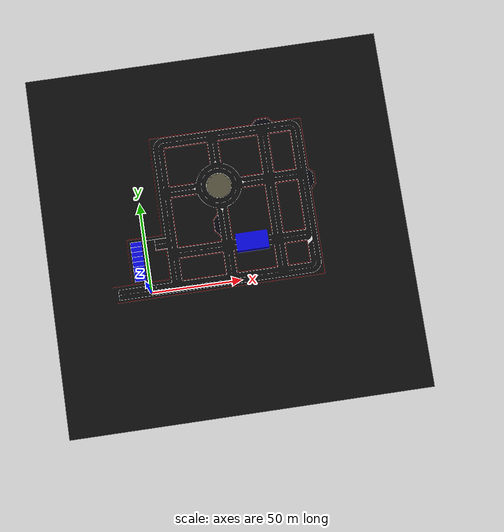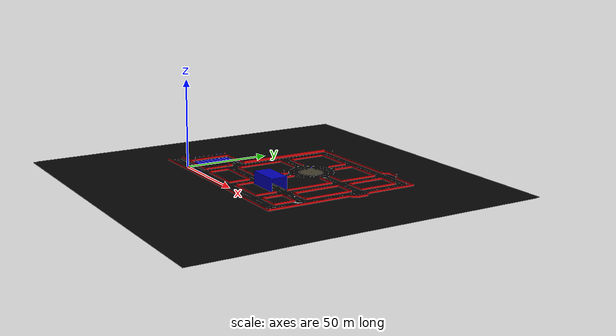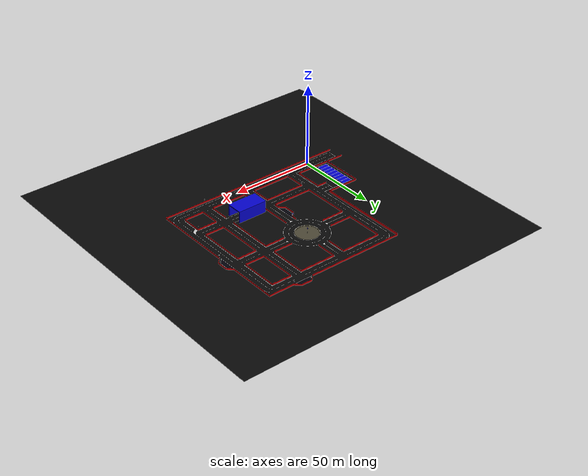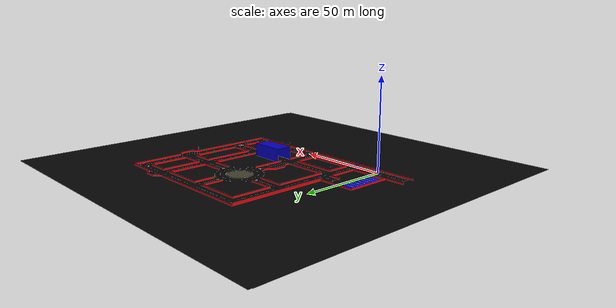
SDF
<?xml version="1.0" encoding="UTF-8"?>
<sdf version="1.8">
    <world name="empty_world">
        <physics name="1ms" type="ignored">
            <max_step_size>0.001</max_step_size>
            <real_time_factor>1.0</real_time_factor>
        </physics>
        <plugin
            filename="gz-sim-physics-system"
            name="gz::sim::systems::Physics">
        </plugin>
        <plugin
            filename="gz-sim-sensors-system"
            name="gz::sim::systems::Sensors">
            <render_engine>ogre2</render_engine>
        </plugin>
        <plugin
            filename="gz-sim-scene-broadcaster-system"
            name="gz::sim::systems::SceneBroadcaster">
        </plugin>
        <plugin
            filename="gz-sim-user-commands-system"
            name="gz::sim::systems::UserCommands">
        </plugin>

        <!-- ========== SENSOR PLUGINS ========== -->
        <plugin
            filename="gz-sim-imu-system"
            name="gz::sim::systems::Imu">
        </plugin>
        <plugin
            filename="ignition-gazebo-navsat-system"
            name="ignition::gazebo::systems::NavSat">
        </plugin>

        <!-- Set the coordinates for the world origin -->
        <spherical_coordinates>
            <surface_model>EARTH_WGS84</surface_model>
            <world_frame_orientation>ENU</world_frame_orientation>
            <latitude_deg>-22.986687</latitude_deg>
            <longitude_deg>-43.202501</longitude_deg>
            <elevation>0</elevation>
            <heading_deg>0</heading_deg>
        </spherical_coordinates>

        <light type="directional" name="sun">
            <cast_shadows>true</cast_shadows>
            <pose>0 0 10 0 0 0</pose>
            <diffuse>1 1 1 1</diffuse>
            <specular>0.5 0.5 0.5 1</specular>
            <attenuation>
                <range>1000</range>
                <constant>0.9</constant>
                <linear>0.01</linear>
                <quadratic>0.001</quadratic>
            </attenuation>
            <direction>-0.5 0.1 -0.9</direction>
        </light>

        <model name="RoboTaksiPist">
            <static>true</static>
            <pose>0 0 0.1 0 0 0</pose>
            <include>
                <uri>
                    model://RoboTaksiPist2024
                </uri>
            </include>
        </model>

        <model name="durak_tabelasi_1">
            <static>true</static>
            <pose>41.9168 38.4018 0.1 0 0 -1.5707</pose>
            <include>
                <uri>
                    model://DurakTabelasi
                </uri>
            </include>
        </model>

        <model name="durak_tabelasi_2">
            <static>true</static>
            <pose>80.7373 86.3220 0.1 0 0 3.1415</pose>
            <include>
                <uri>
                    model://DurakTabelasi
                </uri>
            </include>
        </model>

        <model name="durak_tabelasi_3">
            <static>true</static>
            <pose>96.2465 44.7743 0.1 0 0 1.5707</pose>
            <include>
                <uri>
                    model://DurakTabelasi
                </uri>
            </include>
        </model>

        <model name="donel_kavsak_tabelasi">
            <static>true</static>
            <pose>45.2090 54.2121 0.1 0 0 3.1415</pose>
            <include>
                <uri>
                    model://DonelKavsakTabelasi
                </uri>
            </include>
        </model>

        <model name="park_yeri_tabelasi_1">
            <static>true</static>
            <pose>-8.095 8.675 0.1 0 0 3.1415</pose>
            <include>
                <uri>
                    model://ParkYeriTabelasi
                </uri>
            </include>
        </model>

        <model name="park_yeri_tabelasi_2">
            <static>true</static>
            <pose>-8.095 11.35 0.1 0 0 3.1415</pose>
            <include>
                <uri>
                    model://ParkYeriTabelasi
                </uri>
            </include>
        </model>

        <model name="park_yeri_tabelasi_3">
            <static>true</static>
            <pose>-8.095 22.4025 0.1 0 0 3.1415</pose>
            <include>
                <uri>
                    model://ParkYeriTabelasi
                </uri>
            </include>
        </model>

        <model name="park_yeri_tabelasi_4">
            <static>true</static>
            <pose>-8.095 25.1205 0.1 0 0 3.1415</pose>
            <include>
                <uri>
                    model://ParkYeriTabelasi
                </uri>
            </include>
        </model>

        <model name="park_etmek_yasaktir_tabelasi_1">
            <static>true</static>
            <pose>-8.095 19.6195 0.1 0 0 3.1415</pose>
            <include>
                <uri>
                    model://ParkEtmekYasaktirTabelasi
                </uri>
            </include>
        </model>

        <model name="park_etmek_yasaktir_tabelasi_2">
            <static>true</static>
            <pose>-8.095 14.025 0.1 0 0 3.1415</pose>
            <include>
                <uri>
                    model://ParkEtmekYasaktirTabelasi
                </uri>
            </include>
        </model>

        <model name="park_etmek_yasaktir_tabelasi_3">
            <static>true</static>
            <pose>-8.095 16.9125 0.1 0 0 3.1415</pose>
            <include>
                <uri>
                    model://ParkEtmekYasaktirTabelasi
                </uri>
            </include>
        </model>

        <model name="park_etmek_yasaktir_tabelasi_4">
            <static>true</static>
            <pose>-8.095 27.875 0.1 0 0 3.1415</pose>
            <include>
                <uri>
                    model://ParkEtmekYasaktirTabelasi
                </uri>
            </include>
        </model>

        <model name="girisi_olmayan_yol">
            <static>true</static>
            <pose>17.9925 4.5784 0.1 0 0 0</pose>
            <include>
                <uri>
                    model://GirisiOlmayanYolTabelasi
                </uri>
            </include>
        </model>

        <model name="trafik_lambasi_1">
            <pose>70.3899 -3.1463 0.1 0 0 0</pose>
            <include>
                <uri>
                    model://KirmiziTrafikLambasi
                </uri>
            </include>
        </model>

        <model name="trafik_lambasi_2">
            <pose>18.0398 86.2539 0.1 0 0 3.1415</pose>
            <include>
                <uri>
                    model://YesilTrafikLambasi
                </uri>
            </include>
        </model>

        <model name="saga_mecburi_yon">
            <pose>18.0232 16.4875 0.1 0 0 1.5707</pose>
            <include>
                <uri>
                    model://SagaMecburiYonTabelasi
                </uri>
            </include>
        </model>

        <model name="sola_mecburi_yon">
            <pose>88.9272 16.4139 0.1 0 0 0</pose>
            <include>
                <uri>
                    model://SolaMecburiYonTabelasi
                </uri>
            </include>
        </model>

    </world>
</sdf>

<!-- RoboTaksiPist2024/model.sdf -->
<sdf version="1.5">
  <model name='RoboTaksiPist2024'>
    <static>true</static>
    <link name="body">
      <pose>0 0 0 0 0 0</pose>

        <visual name="visual">
          <geometry>
            <mesh><uri>model://RoboTaksiPist2024/meshes/RoboTaksiPist2024.dae</uri></mesh>
          </geometry>
        </visual>

        <collision name="collision">
          <geometry>
            <mesh><uri>model://RoboTaksiPist2024/meshes/RoboTaksiPist2024.dae</uri></mesh>
          </geometry>
        </collision>

        <!-- TODO: Replace with accurate values of mass and inertia -->
        <inertial>
          <mass>1.0</mass>
          <inertia>
            <ixx>0.1</ixx>
            <iyy>0.1</iyy>
            <izz>0.1</izz>
          </inertia>
        </inertial>
    </link>
  </model>
</sdf>

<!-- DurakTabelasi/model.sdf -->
<sdf version="1.5">
  <model name='DurakTabelasi'>
    <static>true</static>
    <link name="body">
      <pose>0 0 0 0 0 0</pose>

        <visual name="visual">
          <geometry>
            <mesh><uri>model://DurakTabelasi/meshes/DurakTabelasi.dae</uri></mesh>
          </geometry>
        </visual>

        <collision name="collision">
          <geometry>
            <mesh><uri>model://DurakTabelasi/meshes/DurakTabelasi.dae</uri></mesh>
          </geometry>
        </collision>

        <!-- TODO: Replace with accurate values of mass and inertia -->
        <inertial>
          <mass>1.0</mass>
          <inertia>
            <ixx>0.1</ixx>
            <iyy>0.1</iyy>
            <izz>0.1</izz>
          </inertia>
        </inertial>
    </link>
  </model>
</sdf>

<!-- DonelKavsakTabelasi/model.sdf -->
<sdf version="1.5">
  <model name='DonelKavsakTabelasi'>
    <static>true</static>
    <link name="body">
      <pose>0 0 0 0 0 0</pose>

        <visual name="visual">
          <geometry>
            <mesh><uri>model://DonelKavsakTabelasi/meshes/DonelKavsakTabelasi.dae</uri></mesh>
          </geometry>
        </visual>

        <collision name="collision">
          <geometry>
            <mesh><uri>model://DonelKavsakTabelasi/meshes/DonelKavsakTabelasi.dae</uri></mesh>
          </geometry>
        </collision>

        <!-- TODO: Replace with accurate values of mass and inertia -->
        <inertial>
          <mass>1.0</mass>
          <inertia>
            <ixx>0.1</ixx>
            <iyy>0.1</iyy>
            <izz>0.1</izz>
          </inertia>
        </inertial>
    </link>
  </model>
</sdf>

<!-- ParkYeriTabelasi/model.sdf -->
<sdf version="1.5">
  <model name='ParkYeriTabelasi'>
    <static>true</static>
    <link name="body">
      <pose>0 0 0 0 0 0</pose>

        <visual name="visual">
          <geometry>
            <mesh><uri>model://ParkYeriTabelasi/meshes/ParkYeriTabelasi.dae</uri></mesh>
          </geometry>
        </visual>

        <collision name="collision">
          <geometry>
            <mesh><uri>model://ParkYeriTabelasi/meshes/ParkYeriTabelasi.dae</uri></mesh>
          </geometry>
        </collision>

        <!-- TODO: Replace with accurate values of mass and inertia -->
        <inertial>
          <mass>1.0</mass>
          <inertia>
            <ixx>0.1</ixx>
            <iyy>0.1</iyy>
            <izz>0.1</izz>
          </inertia>
        </inertial>
    </link>
  </model>
</sdf>

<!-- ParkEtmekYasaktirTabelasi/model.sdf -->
<sdf version="1.5">
  <model name='ParkEtmekYasaktirTabelasi'>
    <static>true</static>
    <link name="body">
      <pose>0 0 0 0 0 0</pose>

        <visual name="visual">
          <geometry>
            <mesh><uri>model://ParkEtmekYasaktirTabelasi/meshes/ParkEtmekYasaktirTabelasi.dae</uri></mesh>
          </geometry>
        </visual>

        <collision name="collision">
          <geometry>
            <mesh><uri>model://ParkEtmekYasaktirTabelasi/meshes/ParkEtmekYasaktirTabelasi.dae</uri></mesh>
          </geometry>
        </collision>

        <!-- TODO: Replace with accurate values of mass and inertia -->
        <inertial>
          <mass>1.0</mass>
          <inertia>
            <ixx>0.1</ixx>
            <iyy>0.1</iyy>
            <izz>0.1</izz>
          </inertia>
        </inertial>
    </link>
  </model>
</sdf>

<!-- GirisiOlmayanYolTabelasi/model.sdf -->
<sdf version="1.5">
  <model name='GirisiOlmayanYolTabelasi'>
    <static>true</static>
    <link name="body">
      <pose>0 0 0 0 0 0</pose>

        <visual name="visual">
          <geometry>
            <mesh><uri>model://GirisiOlmayanYolTabelasi/meshes/GirisiOlmayanYolTabelasi.dae</uri></mesh>
          </geometry>
        </visual>

        <collision name="collision">
          <geometry>
            <mesh><uri>model://GirisiOlmayanYolTabelasi/meshes/GirisiOlmayanYolTabelasi.dae</uri></mesh>
          </geometry>
        </collision>

        <!-- TODO: Replace with accurate values of mass and inertia -->
        <inertial>
          <mass>1.0</mass>
          <inertia>
            <ixx>0.1</ixx>
            <iyy>0.1</iyy>
            <izz>0.1</izz>
          </inertia>
        </inertial>
    </link>
  </model>
</sdf>

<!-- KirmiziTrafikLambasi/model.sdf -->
<sdf version="1.5">
  <model name='KirmiziTrafikLambasi'>
    <static>true</static>
    <link name="body">
      <pose>0 0 0 0 0 0</pose>

        <visual name="visual">
          <geometry>
            <mesh><uri>model://KirmiziTrafikLambasi/meshes/KirmiziTrafikLambasi.dae</uri></mesh>
          </geometry>
        </visual>

        <collision name="collision">
          <geometry>
            <mesh><uri>model://KirmiziTrafikLambasi/meshes/KirmiziTrafikLambasi.dae</uri></mesh>
          </geometry>
        </collision>

        <!-- TODO: Replace with accurate values of mass and inertia -->
        <inertial>
          <mass>1.0</mass>
          <inertia>
            <ixx>0.1</ixx>
            <iyy>0.1</iyy>
            <izz>0.1</izz>
          </inertia>
        </inertial>
    </link>
  </model>
</sdf>

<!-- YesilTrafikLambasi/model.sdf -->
<sdf version="1.5">
  <model name='YesilTrafikLambasi'>
    <static>true</static>
    <link name="body">
      <pose>0 0 0 0 0 0</pose>

        <visual name="visual">
          <geometry>
            <mesh><uri>model://YesilTrafikLambasi/meshes/YesilTrafikLambasi.dae</uri></mesh>
          </geometry>
        </visual>

        <collision name="collision">
          <geometry>
            <mesh><uri>model://YesilTrafikLambasi/meshes/YesilTrafikLambasi.dae</uri></mesh>
          </geometry>
        </collision>

        <!-- TODO: Replace with accurate values of mass and inertia -->
        <inertial>
          <mass>1.0</mass>
          <inertia>
            <ixx>0.1</ixx>
            <iyy>0.1</iyy>
            <izz>0.1</izz>
          </inertia>
        </inertial>
    </link>
  </model>
</sdf>

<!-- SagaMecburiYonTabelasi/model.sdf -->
<sdf version="1.5">
  <model name='SagaMecburiYonTabelasi'>
    <static>true</static>
    <link name="body">
      <pose>0 0 0 0 0 0</pose>

        <visual name="visual">
          <geometry>
            <mesh><uri>model://SagaMecburiYonTabelasi/meshes/SagaMecburiYonTabelasi.dae</uri></mesh>
          </geometry>
        </visual>

        <collision name="collision">
          <geometry>
            <mesh><uri>model://SagaMecburiYonTabelasi/meshes/SagaMecburiYonTabelasi.dae</uri></mesh>
          </geometry>
        </collision>

        <!-- TODO: Replace with accurate values of mass and inertia -->
        <inertial>
          <mass>1.0</mass>
          <inertia>
            <ixx>0.1</ixx>
            <iyy>0.1</iyy>
            <izz>0.1</izz>
          </inertia>
        </inertial>
    </link>
  </model>
</sdf>

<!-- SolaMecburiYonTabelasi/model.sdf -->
<sdf version="1.5">
  <model name='SolaMecburiYonTabelasi'>
    <static>true</static>
    <link name="body">
      <pose>0 0 0 0 0 0</pose>

        <visual name="visual">
          <geometry>
            <mesh><uri>model://SolaMecburiYonTabelasi/meshes/SolaMecburiYonTabelasi.dae</uri></mesh>
          </geometry>
        </visual>

        <collision name="collision">
          <geometry>
            <mesh><uri>model://SolaMecburiYonTabelasi/meshes/SolaMecburiYonTabelasi.dae</uri></mesh>
          </geometry>
        </collision>

        <!-- TODO: Replace with accurate values of mass and inertia -->
        <inertial>
          <mass>1.0</mass>
          <inertia>
            <ixx>0.1</ixx>
            <iyy>0.1</iyy>
            <izz>0.1</izz>
          </inertia>
        </inertial>
    </link>
  </model>
</sdf>
